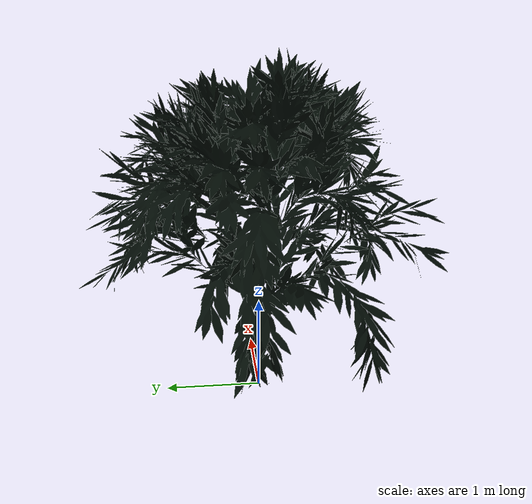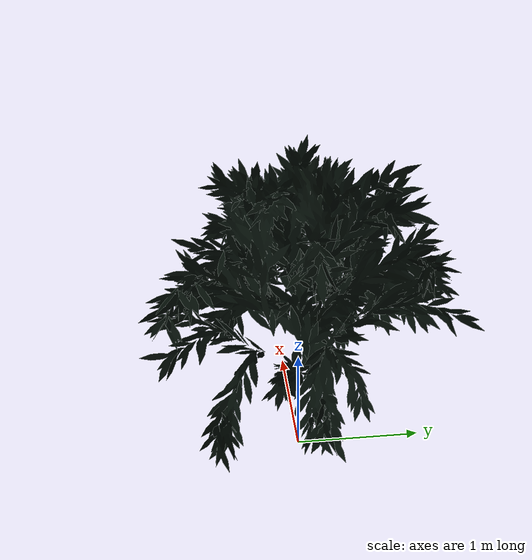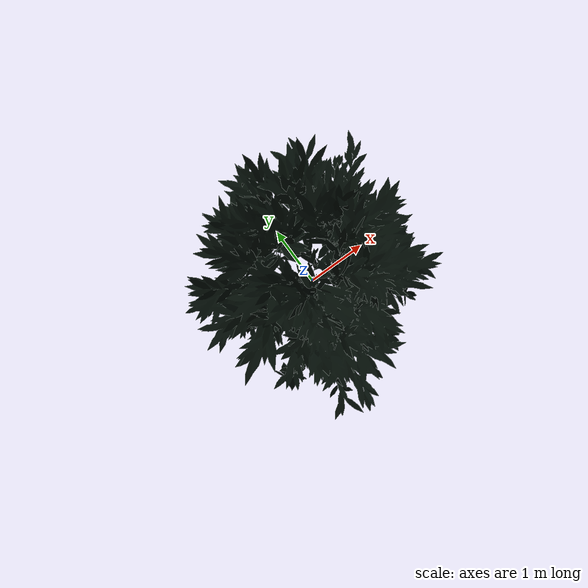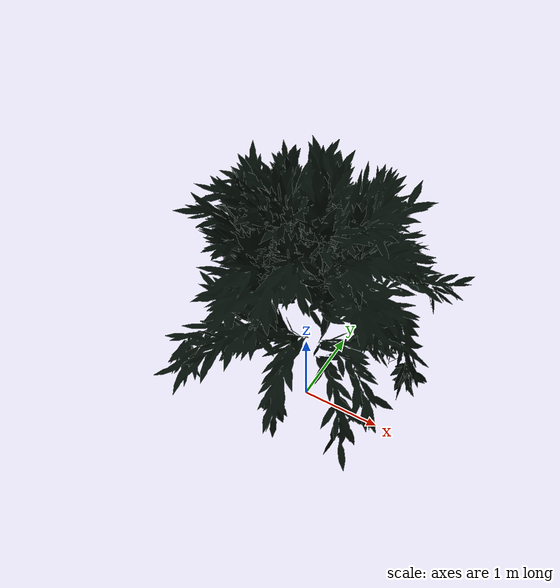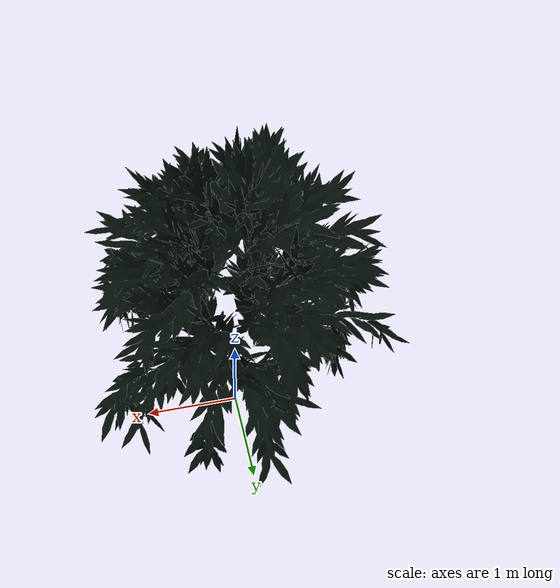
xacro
<robot name="robot">
  <link name="coffee_plant_leaves_link">
    <inertial>
      <origin xyz="0 0 0" rpy="0 0 0" />
      <mass value="1" />
      <inertia ixx="1" ixy="0" ixz="0" iyy="1" iyz="0" izz="1" />
    </inertial>
    <visual>
      <origin xyz="0 0 0" rpy="0 0 0" />
      <geometry>
        <mesh filename="package://coffee_plant/meshes/coffee_plant_leaves.dae" />
      </geometry>
    </visual>
    <collision>
      <origin xyz="0 0 0" rpy="0 0 0" />
      <geometry>
        <mesh filename="package://coffee_plant/meshes/coffee_plant_leaves.dae" />
      </geometry>
    </collision>
  </link>

  <gazebo> <static>true</static></gazebo>
</robot>
